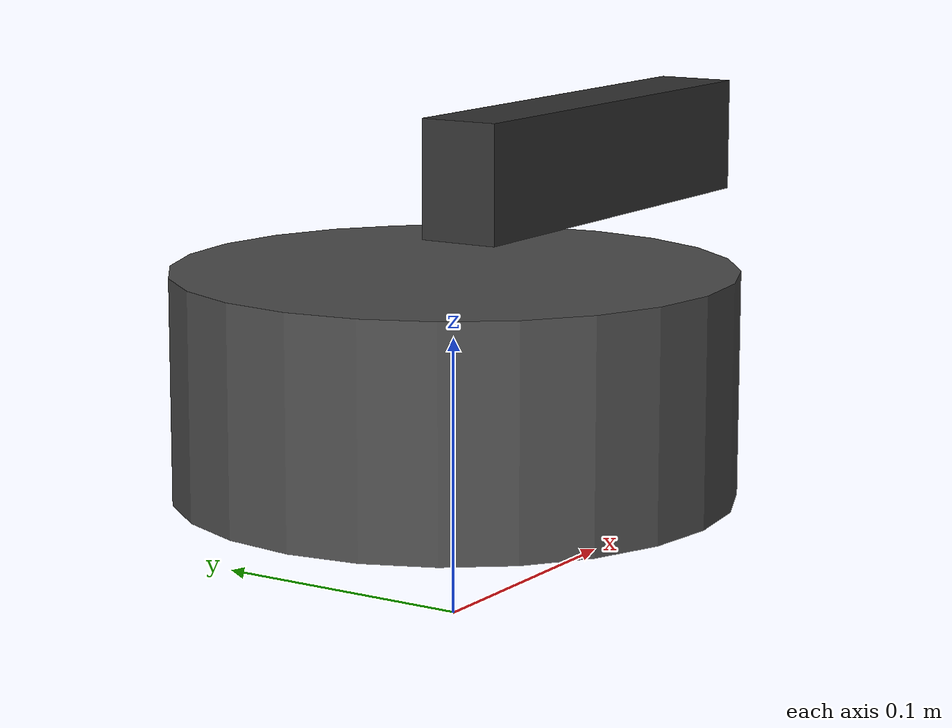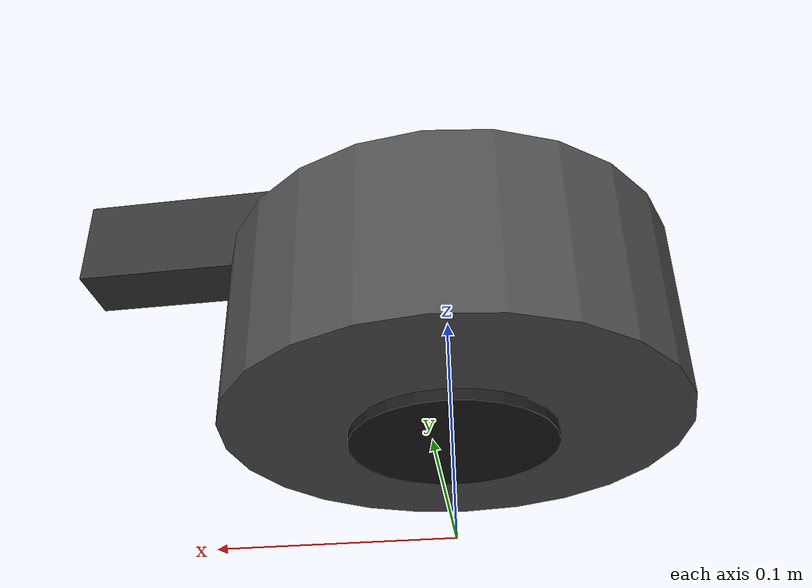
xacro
<?xml version="1.0"?>
<!-- IMP2 robot URDF (Phase 1 skeleton)
  - Generated by Joker + Gaja
  - See ADR-0008 mechanics for dimensions
  - See ADR-0006 encoders + ADR-0003 power
-->
<robot xmlns:xacro="http://www.ros.org/wiki/xacro" name="imp2">

  <!-- Constants -->
  <xacro:property name="wheel_radius" value="0.045" />  <!-- 90 mm diameter / 2 -->
  <xacro:property name="wheel_width" value="0.010" />   <!-- 10 mm -->
  <xacro:property name="chassis_radius" value="0.100" /> <!-- 200 mm diameter / 2 -->
  <xacro:property name="chassis_height" value="0.080" /> <!-- 80 mm -->
  <xacro:property name="track" value="0.180" />         <!-- 180 mm inter-wheel -->
  <xacro:property name="battery_height" value="0.025" />
  <xacro:property name="compute_height" value="0.050" />

  <!-- Base link (origin in middle of bottom layer) -->
  <link name="base_link">
    <visual>
      <origin xyz="0 0 ${chassis_height/2}" rpy="0 0 0" />
      <geometry>
        <cylinder radius="${chassis_radius}" length="${chassis_height}" />
      </geometry>
      <material name="dark_grey">
        <color rgba="0.3 0.3 0.3 1.0" />
      </material>
    </visual>
    <collision>
      <origin xyz="0 0 ${chassis_height/2}" rpy="0 0 0" />
      <geometry>
        <cylinder radius="${chassis_radius}" length="${chassis_height}" />
      </geometry>
    </collision>
    <inertial>
      <mass value="4.0" />
      <origin xyz="0 0 ${chassis_height/2}" />
      <inertia ixx="0.06" ixy="0" ixz="0" iyy="0.06" iyz="0" izz="0.10" />
    </inertial>
  </link>

  <link name="base_footprint" />

  <joint name="base_footprint_to_base_link" type="fixed">
    <parent link="base_footprint" />
    <child link="base_link" />
    <origin xyz="0 0 ${wheel_radius}" />
  </joint>

  <!-- Wheels -->
  <xacro:macro name="wheel" params="prefix pos_x">
    <link name="${prefix}_wheel">
      <visual>
        <origin xyz="0 0 0" rpy="0 0 0" />
        <geometry>
          <cylinder radius="${wheel_radius}" length="${wheel_width}" />
        </geometry>
        <material name="black">
          <color rgba="0.1 0.1 0.1 1.0" />
        </material>
      </visual>
      <collision>
        <geometry>
          <cylinder radius="${wheel_radius}" length="${wheel_width}" />
        </geometry>
      </collision>
      <inertial>
        <mass value="0.1" />
        <inertia ixx="0.001" ixy="0" ixz="0" iyy="0.001" iyz="0" izz="0.001" />
      </inertial>
    </link>

    <joint name="${prefix}_wheel_joint" type="continuous">
      <parent link="base_link" />
      <child link="${prefix}_wheel" />
      <origin xyz="${pos_x} 0 0" rpy="0 0 0" />
      <axis xyz="0 1 0" />
    </joint>
  </xacro:macro>

  <xacro:wheel prefix="left"  pos_x="0" />
  <xacro:wheel prefix="right" pos_x="0" />

  <!-- ZED2i camera (front, 30mm above chassis) -->
  <link name="zed2i_camera_link">
    <visual>
      <origin xyz="0 0 0" rpy="0 0 0" />
      <geometry>
        <box size="0.175 0.030 0.043" />
      </geometry>
      <material name="dark_grey">
        <color rgba="0.2 0.2 0.2 1.0" />
      </material>
    </visual>
  </link>

  <joint name="zed2i_joint" type="fixed">
    <parent link="base_link" />
    <child link="zed2i_camera_link" />
    <origin xyz="0.090 0 ${chassis_height + 0.030}" rpy="0 0 0" />
  </joint>

  <link name="zed2i_left_camera_frame" />
  <link name="zed2i_right_camera_frame" />
  <link name="zed2i_imu_frame" />

  <joint name="zed2i_left_joint" type="fixed">
    <parent link="zed2i_camera_link" />
    <child link="zed2i_left_camera_frame" />
    <origin xyz="0 0.060 0" rpy="0 0 0" />
  </joint>

  <joint name="zed2i_right_joint" type="fixed">
    <parent link="zed2i_camera_link" />
    <child link="zed2i_right_camera_frame" />
    <origin xyz="0 -0.060 0" rpy="0 0 0" />
  </joint>

  <joint name="zed2i_imu_joint" type="fixed">
    <parent link="zed2i_camera_link" />
    <child link="zed2i_imu_frame" />
    <origin xyz="0 0 0" rpy="0 0 0" />
  </joint>

  <!-- BNO085 IMU (ADR-0012)
       Mounted on top layer (warstwa 3), central, 80mm from motors.
       Per ADR-0008: 10 cm above base_link, X-fwd convention. -->
  <link name="imu_link">
    <inertial>
      <mass value="0.005" />  <!-- BNO085 is ~5g -->
      <origin xyz="0 0 0" />
      <inertia ixx="0.0001" ixy="0" ixz="0" iyy="0.0001" iyz="0" izz="0.0001" />
    </inertial>
  </link>

  <joint name="base_to_imu" type="fixed">
    <parent link="base_link" />
    <child link="imu_link" />
    <origin xyz="0 0 0.10" rpy="0 0 0" />
  </joint>

  <!-- ros2_control: micro-ROS hardware interface -->
  <ros2_control name="imp2_hw" type="system">
    <hardware>
      <plugin>micro_ros_platformio/MicroRosHardwareInterface</plugin>
      <param name="serial_port">/dev/ttyACM0</param>
    </hardware>
    <joint name="left_wheel_joint">
      <command_interface name="velocity" />
      <state_interface name="position" />
      <state_interface name="velocity" />
    </joint>
    <joint name="right_wheel_joint">
      <command_interface name="velocity" />
      <state_interface name="position" />
      <state_interface name="velocity" />
    </joint>
  </ros2_control>

</robot>
